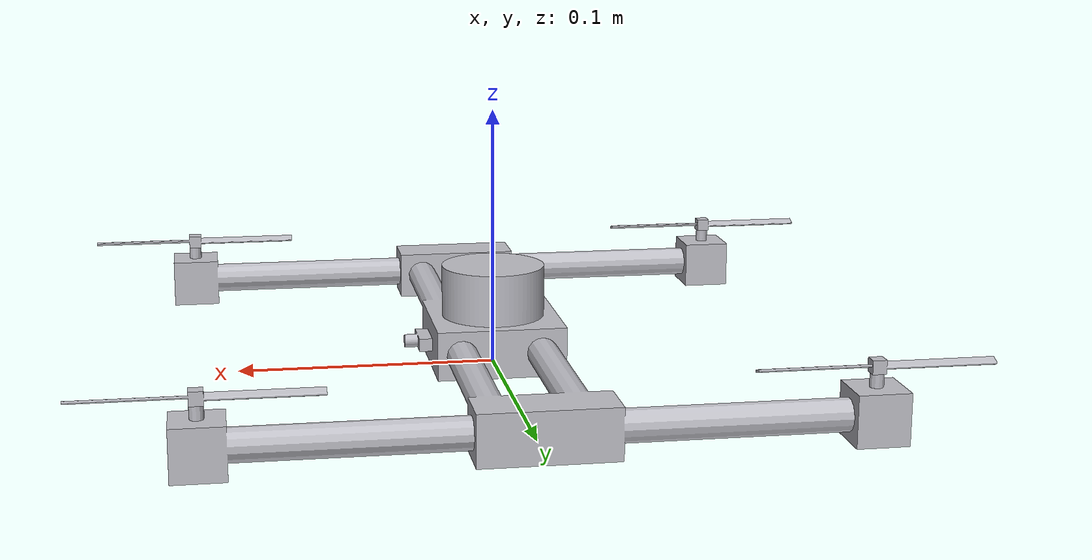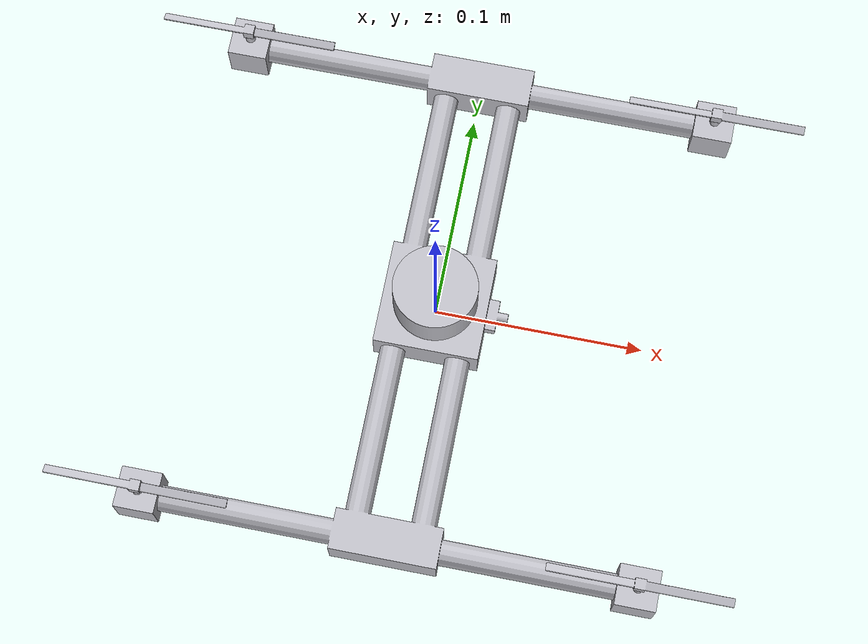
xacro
<?xml version="1.0" ?>
<robot name="drone" xmlns:xacro="http://www.ros.org/wiki/xacro">

<xacro:include filename="$(find drone_description)/urdf/materials.xacro" />
<xacro:include filename="$(find drone_description)/urdf/drone.gazebo" />
<link name="base_link">
  <inertial>
    <origin xyz="-1.3611796838095473e-09 2.2572788549915626e-09 0.009525511568441525" rpy="0 0 0"/>
    <mass value="0.1874865054280611"/>
    <inertia ixx="0.001558" iyy="0.000589" izz="0.002139" ixy="-0.0" iyz="0.0" ixz="0.0"/>
  </inertial>
  <visual>
    <origin xyz="0 0 0" rpy="0 0 0"/>
    <geometry>
      <mesh filename="package://drone_description/meshes/base_link.stl" scale="0.001 0.001 0.001"/>
    </geometry>
    <material name="silver"/>
  </visual>
  <collision>
    <origin xyz="0 0 0" rpy="0 0 0"/>
    <geometry>
      <mesh filename="package://drone_description/meshes/base_link.stl" scale="0.001 0.001 0.001"/>
    </geometry>
  </collision>
</link>

<link name="prop_front_right">
  <inertial>
    <origin xyz="-9.99431040704657e-09 3.364808431882693e-13 0.0024999999998293852" rpy="0 0 0"/>
    <mass value="0.00044742627679520287"/>
        <inertia ixx="0.001558" iyy="0.000589" izz="0.002139" ixy="-0.0" iyz="0.0" ixz="0.0"/>
  </inertial>
  <visual>
    <origin xyz="-0.1155 0.1155 -0.024" rpy="0 0 0"/>
    <geometry>
      <mesh filename="package://drone_description/meshes/front_right_1.stl" scale="0.001 0.001 0.001"/>
    </geometry>
    <material name="silver"/>
  </visual>
  <collision>
    <origin xyz="-0.1155 0.1155 -0.024" rpy="0 0 0"/>
    <geometry>
      <mesh filename="package://drone_description/meshes/front_right_1.stl" scale="0.001 0.001 0.001"/>
    </geometry>
  </collision>
</link>

<link name="prop_front_left">
  <inertial>
    <origin xyz="5.689893001203927e-16 2.636779683484747e-16 0.002500000000000068" rpy="0 0 0"/>
    <mass value="0.00044742627687353686"/>
        <inertia ixx="0.001558" iyy="0.000589" izz="0.002139" ixy="-0.0" iyz="0.0" ixz="0.0"/>
  </inertial>
  <visual>
    <origin xyz="-0.1155 -0.1155 -0.024" rpy="0 0 0"/>
    <geometry>
      <mesh filename="package://drone_description/meshes/front_left_1.stl" scale="0.001 0.001 0.001"/>
    </geometry>
    <material name="silver"/>
  </visual>
  <collision>
    <origin xyz="-0.1155 -0.1155 -0.024" rpy="0 0 0"/>
    <geometry>
      <mesh filename="package://drone_description/meshes/front_left_1.stl" scale="0.001 0.001 0.001"/>
    </geometry>
  </collision>
</link>

<link name="prop_back_left">
  <inertial>
    <origin xyz="6.938893903907228e-17 -6.938893903907228e-17 0.002500000000000016" rpy="0 0 0"/>
    <mass value="0.0004474262768735355"/>
        <inertia ixx="0.001558" iyy="0.000589" izz="0.002139" ixy="-0.0" iyz="0.0" ixz="0.0"/>
  </inertial>
  <visual>
    <origin xyz="0.1155 -0.1155 -0.024" rpy="0 0 0"/>
    <geometry>
      <mesh filename="package://drone_description/meshes/back_left_1.stl" scale="0.001 0.001 0.001"/>
    </geometry>
    <material name="silver"/>
  </visual>
  <collision>
    <origin xyz="0.1155 -0.1155 -0.024" rpy="0 0 0"/>
    <geometry>
      <mesh filename="package://drone_description/meshes/back_left_1.stl" scale="0.001 0.001 0.001"/>
    </geometry>
  </collision>
</link>

<link name="prop_back_right">
  <inertial>
    <origin xyz="-3.806064898109751e-07 -6.938893903907228e-16 0.0025000000000001688" rpy="0 0 0"/>
    <mass value="0.00044743028376449776"/>
       <inertia ixx="0.001558" iyy="0.000589" izz="0.002139" ixy="-0.0" iyz="0.0" ixz="0.0"/>
  </inertial>
  <visual>
    <origin xyz="0.1155 0.1155 -0.024" rpy="0 0 0"/>
    <geometry>
      <mesh filename="package://drone_description/meshes/back_right_1.stl" scale="0.001 0.001 0.001"/>
    </geometry>
    <material name="silver"/>
  </visual>
  <collision>
    <origin xyz="0.1155 0.1155 -0.024" rpy="0 0 0"/>
    <geometry>
      <mesh filename="package://drone_description/meshes/back_right_1.stl" scale="0.001 0.001 0.001"/>
    </geometry>
  </collision>
</link>

<link name="lidar_1">
  <inertial>
    <origin xyz="0.0 -2.8271597168564596e-18 0.009999999999999998" rpy="0 0 0"/>
    <mass value="0.025509732347149122"/>
    <inertia ixx="3e-06" iyy="3e-06" izz="5e-06" ixy="0.0" iyz="-0.0" ixz="0.0"/>
  </inertial>
  <visual>
    <origin xyz="-0.0 -0.0 -0.019" rpy="0 0 0"/>
    <geometry>
      <mesh filename="package://drone_description/meshes/lidar_1.stl" scale="0.001 0.001 0.001"/>
    </geometry>
    <material name="silver"/>
  </visual>
  <collision>
    <origin xyz="-0.0 -0.0 -0.019" rpy="0 0 0"/>
    <geometry>
      <mesh filename="package://drone_description/meshes/lidar_1.stl" scale="0.001 0.001 0.001"/>
    </geometry>
  </collision>
</link>

<link name="camera_1">
  <inertial>
    <origin xyz="0.003537404956487491 -5.423653569417846e-14 1.734723475976807e-18" rpy="0 0 0"/>
    <mass value="0.0004802723919810493"/>
        <inertia ixx="0.001558" iyy="0.000589" izz="0.002139" ixy="-0.0" iyz="0.0" ixz="0.0"/>
  </inertial>
  <visual>
    <origin xyz="-0.025 -0.0 -0.0095" rpy="0 0 0"/>
    <geometry>
      <mesh filename="package://drone_description/meshes/camera_1.stl" scale="0.001 0.001 0.001"/>
    </geometry>
    <material name="silver"/>
  </visual>
  <collision>
    <origin xyz="-0.025 -0.0 -0.0095" rpy="0 0 0"/>
    <geometry>
      <mesh filename="package://drone_description/meshes/camera_1.stl" scale="0.001 0.001 0.001"/>
    </geometry>
  </collision>
</link>

<joint name="joint_front_right_prop" type="continuous">
  <origin xyz="0.1155 -0.1155 0.024" rpy="0 0 0"/>
  <parent link="base_link"/>
  <child link="prop_front_right"/>
  <axis xyz="0.0 0.0 1.0"/>
</joint>

<joint name="joint_front_left_prop" type="continuous">
  <origin xyz="0.1155 0.1155 0.024" rpy="0 0 0"/>
  <parent link="base_link"/>
  <child link="prop_front_left"/>
  <axis xyz="0.0 0.0 1.0"/>
</joint>

<joint name="joint_back_left_prop" type="continuous">
  <origin xyz="-0.1155 0.1155 0.024" rpy="0 0 0"/>
  <parent link="base_link"/>
  <child link="prop_back_left"/>
  <axis xyz="0.0 0.0 1.0"/>
</joint>

<joint name="joint_back_right_prop" type="continuous">
  <origin xyz="-0.1155 -0.1155 0.024" rpy="0 0 0"/>
  <parent link="base_link"/>
  <child link="prop_back_right"/>
  <axis xyz="0.0 0.0 1.0"/>
</joint>

<joint name="Rigid 5" type="fixed">
  <origin xyz="0.0 0.0 0.019" rpy="0 0 0"/>
  <parent link="base_link"/>
  <child link="lidar_1"/>
</joint>

<joint name="Rigid 6" type="fixed">
  <origin xyz="0.025 0.0 0.0095" rpy="0 0 0"/>
  <parent link="base_link"/>
  <child link="camera_1"/>
</joint>

<!-- Add transmission elements -->
	<transmission name="front_right_motor_joint" >
		<type>transmission_interface/SimpleTransmission</type>
		<joint name="joint_front_right_prop">
			<hardwareInterface>hardware_interface/VelocityJointInterface</hardwareInterface>
		</joint>
		<actuator name="BLDC_motor1">
			<hardwareInterface>hardware_interface/VelocityJointInterface</hardwareInterface>
			<mechanicalReduction>1</mechanicalReduction>
		</actuator>
	</transmission>

	<transmission name="front_left_motor_joint" >
		<type>transmission_interface/SimpleTransmission</type>
		<joint name="joint_front_left_prop">
			<hardwareInterface>hardware_interface/VelocityJointInterface</hardwareInterface>
		</joint>
		<actuator name="BLDC_motor2">
			<hardwareInterface>hardware_interface/VelocityJointInterface</hardwareInterface>
			<mechanicalReduction>1</mechanicalReduction>
		</actuator>
	</transmission>

	<transmission name="back_right_motor_joint" >
		<type>transmission_interface/SimpleTransmission</type>
		<joint name="joint_back_right_prop">
			<hardwareInterface>hardware_interface/VelocityJointInterface</hardwareInterface>
		</joint>
		<actuator name="BLDC_motor3">
			<hardwareInterface>hardware_interface/VelocityJointInterface</hardwareInterface>
			<mechanicalReduction>1</mechanicalReduction>
		</actuator>
	</transmission>

	<transmission name="back_left_motor_joint" >
		<type>transmission_interface/SimpleTransmission</type>
		<joint name="joint_back_left_prop">
			<hardwareInterface>hardware_interface/VelocityJointInterface</hardwareInterface>
		</joint>
		<actuator name="BLDC_motor4">
			<hardwareInterface>hardware_interface/VelocityJointInterface</hardwareInterface>
			<mechanicalReduction>1</mechanicalReduction>
		</actuator>
	</transmission>

</robot>

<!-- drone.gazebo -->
<robot name="drone" xmlns:xacro="http://www.ros.org/wiki/xacro" >

<xacro:property name="body_color" value="Gazebo/Silver" />

<gazebo>
	<plugin name="gazebo_ros_control" filename="libgazebo_ros_control.so">
		<robotNameSpace>/drone</robotNameSpace>
		<robotSimType>gazebo_ros_control/DefaultRobotHWSim</robotSimType>
	</plugin>
</gazebo>
<gazebo reference="base_link">
  <material>${body_color}</material>
  <mu1>0.2</mu1>
  <mu2>0.2</mu2>
  <selfCollide>true</selfCollide>
  <gravity>true</gravity>
</gazebo>

<gazebo reference="prop_front_right">
  <material>${body_color}</material>
  <mu1>0.2</mu1>
  <mu2>0.2</mu2>
  <selfCollide>true</selfCollide>
</gazebo>

<gazebo reference="prop_front_left">
  <material>${body_color}</material>
  <mu1>0.2</mu1>
  <mu2>0.2</mu2>
  <selfCollide>true</selfCollide>
</gazebo>

<gazebo reference="prop_back_left">
  <material>${body_color}</material>
  <mu1>0.2</mu1>
  <mu2>0.2</mu2>
  <selfCollide>true</selfCollide>
</gazebo>

<gazebo reference="prop_back_right">
  <material>${body_color}</material>
  <mu1>0.2</mu1>
  <mu2>0.2</mu2>
  <selfCollide>true</selfCollide>
</gazebo>

<gazebo reference="lidar_1">
  <material>${body_color}</material>
  <mu1>0.2</mu1>
  <mu2>0.2</mu2>
  <selfCollide>true</selfCollide>
</gazebo>

<gazebo reference="camera_1">
  <material>${body_color}</material>
  <mu1>0.2</mu1>
  <mu2>0.2</mu2>
  <selfCollide>true</selfCollide>
</gazebo>

<gazebo>
		<!-- Provide a Positive Velocity -->
		<plugin name="quad_prop1" filename="libLiftDragPlugin.so">
			<a0>0.1</a0>
			<cla>0.1</cla>
			<cda>0.01</cda>
			<cma>0.0</cma>
			<alpha_stall>0.2</alpha_stall>
			<cla_stall>-0.2</cla_stall>
			<cda_stall>1.0</cda_stall>
			<cma_stall>0.0</cma_stall>
			<cp>0 0.5 0</cp>
			<area>0.762</area>
			<air_density>1.2041</air_density>
			<forward>1 0 0</forward>
			<upward>0 0 -1</upward>
			<link_name>prop_front_right</link_name>
			<control_joint>joint_front_right_prop</control_joint>
		</plugin>
	</gazebo>

	<gazebo>
		<!-- Provide a Negative Velocity -->
		<plugin name="quad_prop2" filename="libLiftDragPlugin.so">
			<a0>0.1</a0>
			<cla>0.1</cla>
			<cda>0.01</cda>
			<cma>0.0</cma>
			<alpha_stall>0.2</alpha_stall>
			<cla_stall>-0.2</cla_stall>
			<cda_stall>1.0</cda_stall>
			<cma_stall>0.0</cma_stall>
			<cp>0 0.5 0</cp>
			<area>0.762</area>
			<air_density>1.2041</air_density>
			<forward>1 0 0</forward>
			<upward>0 0 1</upward>
			<link_name>prop_front_left</link_name>
			<control_joint>joint_front_left_prop</control_joint>
		</plugin>
	</gazebo>

	<gazebo>
		<!-- Provide a Negative Velocity -->
		<plugin name="quad_prop3" filename="libLiftDragPlugin.so">
			<a0>0.1</a0>
			<cla>0.1</cla>
			<cda>0.01</cda>
			<cma>0.0</cma>
			<alpha_stall>0.2</alpha_stall>
			<cla_stall>-0.2</cla_stall>
			<cda_stall>1.0</cda_stall>
			<cma_stall>0.0</cma_stall>
			<cp>0 0.5 0</cp>
			<area>0.762</area>
			<air_density>1.2041</air_density>
			<forward>1 0 0</forward>
			<upward>0 0 1</upward>
			<link_name>prop_back_right</link_name>
			<control_joint>joint_back_right_prop</control_joint>
		</plugin>
	</gazebo>

	<gazebo>
		<!-- Provide a Positive Velocity -->
		<plugin name="quad_prop4" filename="libLiftDragPlugin.so">
			<a0>0.1</a0>
			<cla>0.1</cla>
			<cda>0.01</cda>
			<cma>0.0</cma>
			<alpha_stall>0.2</alpha_stall>
			<cla_stall>-0.2</cla_stall>
			<cda_stall>1.0</cda_stall>
			<cma_stall>0.0</cma_stall>
			<cp>0 0.5 0</cp>
			<area>0.762</area>
			<air_density>1.2041</air_density>
			<forward>1 0 0</forward>
			<upward>0 0 -1</upward>
			<link_name>prop_back_left</link_name>
			<control_joint>joint_back_left_prop</control_joint>
		</plugin>
	</gazebo>

</robot>
